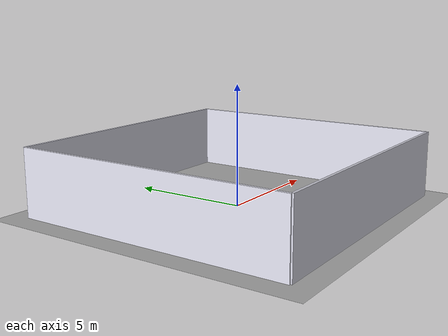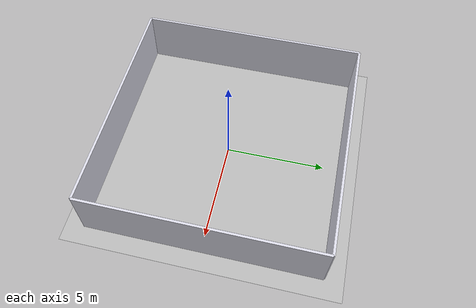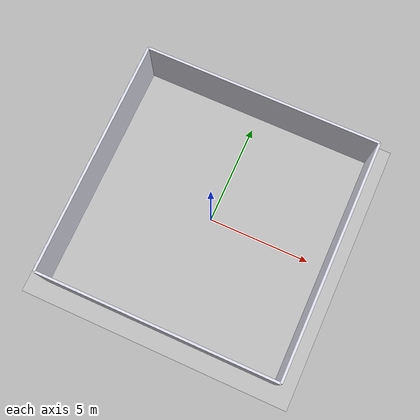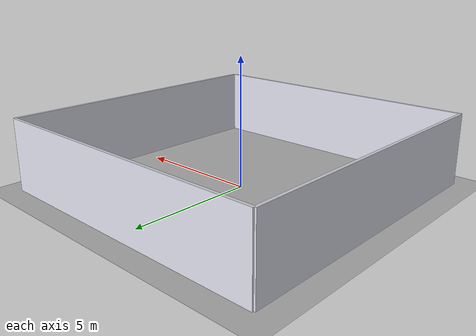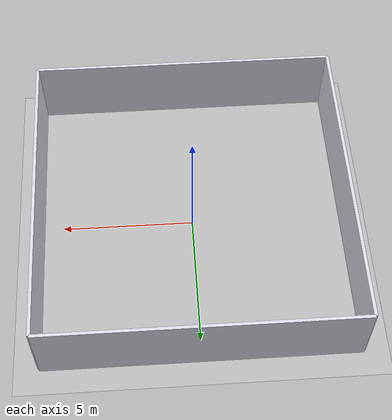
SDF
<?xml version="1.0"?>
<sdf version="1.6">
  <world name="empty_room">
    <plugin name="gazebo_ros_init" filename="libgazebo_ros_init.so"/>
    <plugin name="gazebo_ros_factory" filename="libgazebo_ros_factory.so"/>
    <plugin name="gazebo_ros_state" filename="libgazebo_ros_state.so">
      <update_rate>50</update_rate>
    </plugin>

    <gravity>0 0 -9.8</gravity>

    <include>
      <uri>model://sun</uri>
    </include>

    <model name="ground_plane">
      <static>true</static>
      <link name="link">
        <collision name="collision">
          <geometry>
            <plane>
              <normal>0 0 1</normal>
              <size>12 12</size>
            </plane>
          </geometry>
        </collision>
        <visual name="visual">
          <geometry>
            <plane>
              <normal>0 0 1</normal>
              <size>12 12</size>
            </plane>
          </geometry>
          <material>
            <ambient>0.72 0.72 0.72 1</ambient>
            <diffuse>0.72 0.72 0.72 1</diffuse>
          </material>
        </visual>
      </link>
    </model>

    <model name="front_wall">
      <static>true</static>
      <pose>5.8 0 1.4 0 0 0</pose>
      <link name="link">
        <collision name="collision">
          <geometry><box><size>0.12 11.6 2.8</size></box></geometry>
        </collision>
        <visual name="visual">
          <geometry><box><size>0.12 11.6 2.8</size></box></geometry>
          <material>
            <ambient>0.85 0.85 0.9 1</ambient>
            <diffuse>0.85 0.85 0.9 1</diffuse>
          </material>
        </visual>
      </link>
    </model>

    <model name="back_wall">
      <static>true</static>
      <pose>-5.8 0 1.4 0 0 0</pose>
      <link name="link">
        <collision name="collision">
          <geometry><box><size>0.12 11.6 2.8</size></box></geometry>
        </collision>
        <visual name="visual">
          <geometry><box><size>0.12 11.6 2.8</size></box></geometry>
          <material>
            <ambient>0.85 0.85 0.9 1</ambient>
            <diffuse>0.85 0.85 0.9 1</diffuse>
          </material>
        </visual>
      </link>
    </model>

    <model name="left_wall">
      <static>true</static>
      <pose>0 5.8 1.4 0 0 0</pose>
      <link name="link">
        <collision name="collision">
          <geometry><box><size>11.6 0.12 2.8</size></box></geometry>
        </collision>
        <visual name="visual">
          <geometry><box><size>11.6 0.12 2.8</size></box></geometry>
          <material>
            <ambient>0.85 0.85 0.9 1</ambient>
            <diffuse>0.85 0.85 0.9 1</diffuse>
          </material>
        </visual>
      </link>
    </model>

    <model name="right_wall">
      <static>true</static>
      <pose>0 -5.8 1.4 0 0 0</pose>
      <link name="link">
        <collision name="collision">
          <geometry><box><size>11.6 0.12 2.8</size></box></geometry>
        </collision>
        <visual name="visual">
          <geometry><box><size>11.6 0.12 2.8</size></box></geometry>
          <material>
            <ambient>0.85 0.85 0.9 1</ambient>
            <diffuse>0.85 0.85 0.9 1</diffuse>
          </material>
        </visual>
      </link>
    </model>

  </world>
</sdf>
